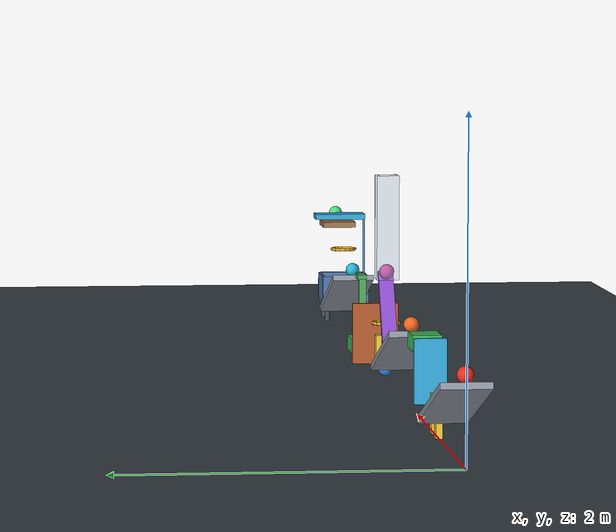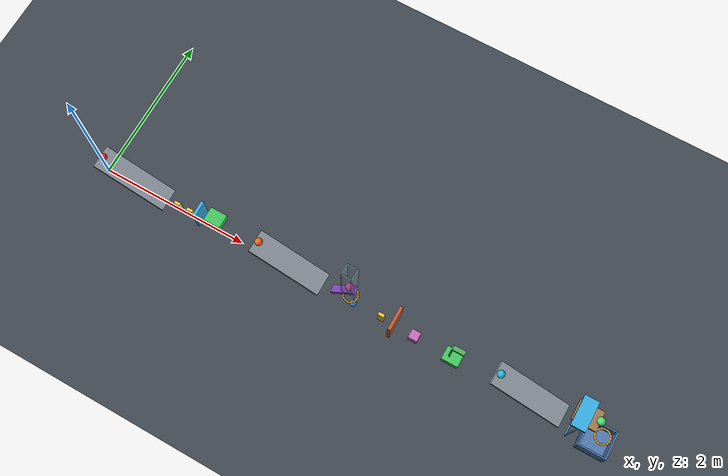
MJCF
<mujoco model="passive_chain_candidate">
  <compiler angle="degree" autolimits="true" inertiafromgeom="auto"/>
  <option timestep="0.002" gravity="0 0 -9.81" integrator="implicitfast" solver="Newton" iterations="100" tolerance="1e-10"/>
  <size njmax="4000" nconmax="1000"/>
  <visual>
    <global azimuth="125" elevation="-18"/>
    <headlight ambient="0.35 0.35 0.35" diffuse="0.7 0.7 0.7" specular="0.2 0.2 0.2"/>
  </visual>

  <!-- All initial generalized velocities are zero. -->
  <!-- solref damping ratio 0.69 approximates e=0.05 for a linearized impact. -->
  <!-- MuJoCo does not provide an exact, velocity-independent restitution attribute. -->
  <!-- Every contact geom explicitly specifies sliding friction 0.70. -->

  <worldbody>
    <light name="main_light" pos="3 -3 7" dir="0 0 -1" directional="true"/>
    <camera name="overview" pos="3.5 -8 4.5" xyaxes="1 0 0 0 0.45 0.893"/>
    <geom name="floor" type="plane" pos="0 0 0" size="12 4 0.1" friction="0.70 0.005 0.0001" solref="0.008 0.69" solimp="0.95 0.99 0.001" rgba="0.24 0.27 0.30 1"/>

    <!-- Ramp top endpoints: (0,0,0.492020) and (0.939693,0,0.15). -->
    <body name="ramp1" pos="0.463006 0 0.302216" quat="0.984807753 0 0.173648178 0">
      <geom name="ramp1_surface" type="box" size="0.50 0.15 0.02" friction="0.70 0.005 0.0001" solref="0.008 0.69" solimp="0.95 0.99 0.001" rgba="0.55 0.58 0.62 1"/>
    </body>
    <body name="ball1" pos="0.054689 0 0.525325">
      <freejoint name="ball1_free"/>
      <geom name="ball1_sphere" type="sphere" size="0.05" mass="0.20" condim="6" friction="0.70 0.005 0.0001" solref="0.008 0.69" solimp="0.95 0.99 0.001" rgba="0.90 0.18 0.12 1"/>
    </body>

    <body name="domino1" pos="1.079693 0 0.12">
      <freejoint name="domino1_free"/>
      <geom name="domino1_box" type="box" size="0.04 0.02 0.12" mass="0.25" friction="0.70 0.005 0.0001" solref="0.008 0.69" solimp="0.95 0.99 0.001" rgba="0.92 0.76 0.22 1"/>
    </body>
    <body name="domino2" pos="1.259693 0 0.12">
      <freejoint name="domino2_free"/>
      <geom name="domino2_box" type="box" size="0.04 0.02 0.12" mass="0.25" friction="0.70 0.005 0.0001" solref="0.008 0.69" solimp="0.95 0.99 0.001" rgba="0.92 0.76 0.22 1"/>
    </body>

    <!-- Positive flap rotation moves the hanging panel toward +x. -->
    <body name="flap1" pos="1.439693 0 0.55">
      <joint name="flap1_hinge" type="hinge" axis="0 -1 0" range="0 65" damping="0.04" armature="0.0001" solreflimit="0.004 1" solimplimit="0.99 0.999 0.0001"/>
      <geom name="flap1_panel" type="box" pos="0 0 -0.20" size="0.02 0.10 0.20" mass="0.30" friction="0.70 0.005 0.0001" solref="0.008 0.69" solimp="0.95 0.99 0.001" rgba="0.20 0.65 0.85 1"/>
    </body>
    <body name="cart1" pos="1.679693 0 0.50">
      <joint name="cart1_slide" type="slide" axis="1 0 0" range="0 0.75" damping="0.20" solreflimit="0.004 1"/>
      <geom name="cart1_chassis" type="box" size="0.11 0.09 0.05" mass="0.50" friction="0.70 0.005 0.0001" solref="0.008 0.69" solimp="0.95 0.99 0.001" rgba="0.25 0.75 0.35 1"/>
    </body>

    <!-- Cart1's front reaches ball2 after 0.45 m of slide travel. -->
    <body name="ramp2" pos="2.698013 0 0.302216" quat="0.984807753 0 0.173648178 0">
      <geom name="ramp2_surface" type="box" size="0.50 0.15 0.02" friction="0.70 0.005 0.0001" solref="0.008 0.69" solimp="0.95 0.99 0.001" rgba="0.55 0.58 0.62 1"/>
    </body>
    <body name="ball2" pos="2.289696 0 0.525325">
      <freejoint name="ball2_free"/>
      <geom name="ball2_sphere" type="sphere" size="0.05" mass="0.20" condim="6" friction="0.70 0.005 0.0001" solref="0.008 0.69" solimp="0.95 0.99 0.001" rgba="0.95 0.40 0.12 1"/>
    </body>

    <!-- The lever starts inclined so the two falling stages remain above z=0. -->
    <!-- Positive rotation lowers its left side and initially raises its right side. -->
    <body name="lever1" pos="3.462020 0 0.459808" quat="0.866025404 0 -0.5 0">
      <joint name="lever1_hinge" type="hinge" axis="0 -1 0" range="0 45" damping="0.04" armature="0.0001" solreflimit="0.004 1" solimplimit="0.99 0.999 0.0001"/>
      <geom name="lever1_beam" type="box" size="0.30 0.05 0.02" mass="0.50" friction="0.70 0.005 0.0001" solref="0.008 0.69" solimp="0.95 0.99 0.001" rgba="0.55 0.30 0.80 1"/>
    </body>
    <body name="ball3" pos="3.536399 0 0.728635">
      <freejoint name="ball3_free"/>
      <geom name="ball3_sphere" type="sphere" size="0.05" mass="0.20" condim="6" friction="0.70 0.005 0.0001" solref="0.008 0.69" solimp="0.95 0.99 0.001" rgba="0.85 0.22 0.62 1"/>
    </body>

    <!-- The right guide starts at z=0.76, above the lever's initial highest corner. -->
    <body name="ball3_guide" pos="3.536399 0 1.03">
      <geom name="ball3_guide_left" type="box" pos="-0.066 0 0" size="0.008 0.074 0.35" friction="0.70 0.005 0.0001" solref="0.008 0.69" solimp="0.95 0.99 0.001" rgba="0.60 0.70 0.80 0.35"/>
      <geom name="ball3_guide_right" type="box" pos="0.066 0 0.04" size="0.008 0.074 0.31" friction="0.70 0.005 0.0001" solref="0.008 0.69" solimp="0.95 0.99 0.001" rgba="0.60 0.70 0.80 0.35"/>
      <geom name="ball3_guide_front" type="box" pos="0 -0.066 0" size="0.058 0.008 0.35" friction="0.70 0.005 0.0001" solref="0.008 0.69" solimp="0.95 0.99 0.001" rgba="0.60 0.70 0.80 0.35"/>
      <geom name="ball3_guide_back" type="box" pos="0 0.066 0" size="0.058 0.008 0.35" friction="0.70 0.005 0.0001" solref="0.008 0.69" solimp="0.95 0.99 0.001" rgba="0.60 0.70 0.80 0.35"/>
    </body>

    <!-- Capsule polygon with a 0.16 m inscribed clear diameter. -->
    <!-- Shifted 0.020 m toward +x to clear the inclined lever at reset. -->
    <body name="ring1" pos="3.556399 0 0.378635">
      <geom name="ring1_segment01" type="capsule" fromto="0.091763 0 0 0.084779 0.035115 0" size="0.01" friction="0.70 0.005 0.0001" solref="0.008 0.69" rgba="0.90 0.65 0.15 1"/>
      <geom name="ring1_segment02" type="capsule" fromto="0.084779 0.035115 0 0.064887 0.064887 0" size="0.01" friction="0.70 0.005 0.0001" solref="0.008 0.69" rgba="0.90 0.65 0.15 1"/>
      <geom name="ring1_segment03" type="capsule" fromto="0.064887 0.064887 0 0.035115 0.084779 0" size="0.01" friction="0.70 0.005 0.0001" solref="0.008 0.69" rgba="0.90 0.65 0.15 1"/>
      <geom name="ring1_segment04" type="capsule" fromto="0.035115 0.084779 0 0 0.091763 0" size="0.01" friction="0.70 0.005 0.0001" solref="0.008 0.69" rgba="0.90 0.65 0.15 1"/>
      <geom name="ring1_segment05" type="capsule" fromto="0 0.091763 0 -0.035115 0.084779 0" size="0.01" friction="0.70 0.005 0.0001" solref="0.008 0.69" rgba="0.90 0.65 0.15 1"/>
      <geom name="ring1_segment06" type="capsule" fromto="-0.035115 0.084779 0 -0.064887 0.064887 0" size="0.01" friction="0.70 0.005 0.0001" solref="0.008 0.69" rgba="0.90 0.65 0.15 1"/>
      <geom name="ring1_segment07" type="capsule" fromto="-0.064887 0.064887 0 -0.084779 0.035115 0" size="0.01" friction="0.70 0.005 0.0001" solref="0.008 0.69" rgba="0.90 0.65 0.15 1"/>
      <geom name="ring1_segment08" type="capsule" fromto="-0.084779 0.035115 0 -0.091763 0 0" size="0.01" friction="0.70 0.005 0.0001" solref="0.008 0.69" rgba="0.90 0.65 0.15 1"/>
      <geom name="ring1_segment09" type="capsule" fromto="-0.091763 0 0 -0.084779 -0.035115 0" size="0.01" friction="0.70 0.005 0.0001" solref="0.008 0.69" rgba="0.90 0.65 0.15 1"/>
      <geom name="ring1_segment10" type="capsule" fromto="-0.084779 -0.035115 0 -0.064887 -0.064887 0" size="0.01" friction="0.70 0.005 0.0001" solref="0.008 0.69" rgba="0.90 0.65 0.15 1"/>
      <geom name="ring1_segment11" type="capsule" fromto="-0.064887 -0.064887 0 -0.035115 -0.084779 0" size="0.01" friction="0.70 0.005 0.0001" solref="0.008 0.69" rgba="0.90 0.65 0.15 1"/>
      <geom name="ring1_segment12" type="capsule" fromto="-0.035115 -0.084779 0 0 -0.091763 0" size="0.01" friction="0.70 0.005 0.0001" solref="0.008 0.69" rgba="0.90 0.65 0.15 1"/>
      <geom name="ring1_segment13" type="capsule" fromto="0 -0.091763 0 0.035115 -0.084779 0" size="0.01" friction="0.70 0.005 0.0001" solref="0.008 0.69" rgba="0.90 0.65 0.15 1"/>
      <geom name="ring1_segment14" type="capsule" fromto="0.035115 -0.084779 0 0.064887 -0.064887 0" size="0.01" friction="0.70 0.005 0.0001" solref="0.008 0.69" rgba="0.90 0.65 0.15 1"/>
      <geom name="ring1_segment15" type="capsule" fromto="0.064887 -0.064887 0 0.084779 -0.035115 0" size="0.01" friction="0.70 0.005 0.0001" solref="0.008 0.69" rgba="0.90 0.65 0.15 1"/>
      <geom name="ring1_segment16" type="capsule" fromto="0.084779 -0.035115 0 0.091763 0 0" size="0.01" friction="0.70 0.005 0.0001" solref="0.008 0.69" rgba="0.90 0.65 0.15 1"/>
    </body>

    <!-- Offset bob makes the vertical ball impact produce a swinging impulse. -->
    <!-- The rigid rod and bob together have mass 0.35 kg. -->
    <body name="pendulum1" pos="3.596399 0 0.555345">
      <joint name="pendulum1_hinge" type="hinge" axis="0 -1 0" range="0 40" damping="0.04" armature="0.0001" solreflimit="0.004 1" solimplimit="0.99 0.999 0.0001"/>
      <geom name="pendulum1_rod" type="capsule" fromto="0 0 0 0 0 -0.50" size="0.008" mass="0.33" friction="0.70 0.005 0.0001" solref="0.008 0.69" solimp="0.95 0.99 0.001" rgba="0.65 0.68 0.72 1"/>
      <geom name="pendulum1_bob" type="sphere" pos="0 0 -0.50" size="0.045" mass="0.02" friction="0.70 0.005 0.0001" solref="0.008 0.69" solimp="0.95 0.99 0.001" rgba="0.20 0.50 0.85 1"/>
    </body>
    <body name="domino3" pos="3.980000 0 0.12">
      <freejoint name="domino3_free"/>
      <geom name="domino3_box" type="box" size="0.04 0.02 0.12" mass="0.25" friction="0.70 0.005 0.0001" solref="0.008 0.69" solimp="0.95 0.99 0.001" rgba="0.92 0.76 0.22 1"/>
    </body>

    <!-- Upright, bottom-hinged door stores gravitational potential energy. -->
    <!-- Its explicit inertia represents a top-weighted 0.45 kg panel. -->
    <body name="door1" pos="4.160000 0 0.02">
      <inertial pos="0 0 0.35" mass="0.45" diaginertia="0.009 0.009 0.004"/>
      <joint name="door1_hinge" type="hinge" axis="0 1 0" range="0 70" damping="0.04" armature="0.0001" solreflimit="0.004 1" solimplimit="0.99 0.999 0.0001"/>
      <geom name="door1_panel" type="box" pos="0 0 0.21" size="0.02 0.16 0.21" friction="0.70 0.005 0.0001" solref="0.008 0.69" solimp="0.95 0.99 0.001" rgba="0.70 0.35 0.18 1"/>
    </body>
    <body name="block1" pos="4.440000 0 0.06">
      <freejoint name="block1_free"/>
      <geom name="block1_cube" type="box" size="0.06 0.06 0.06" mass="0.35" friction="0.70 0.005 0.0001" solref="0.008 0.69" solimp="0.95 0.99 0.001" rgba="0.75 0.40 0.70 1"/>
    </body>

    <!-- The chassis is 0.22 x 0.18 x 0.10 m; attachments share its 0.50 kg total mass. -->
    <!-- The slide supports the cart 1 mm above the floor. -->
    <body name="cart2" pos="4.960000 0 0.051">
      <joint name="cart2_slide" type="slide" axis="1 0 0" range="0 0.75" damping="0.20" solreflimit="0.004 1"/>
      <geom name="cart2_chassis" type="box" size="0.11 0.09 0.05" mass="0.485" friction="0.70 0.005 0.0001" solref="0.008 0.69" solimp="0.95 0.99 0.001" rgba="0.25 0.75 0.35 1"/>
      <geom name="cart2_striker_post" type="box" pos="-0.04 0 0.25" size="0.012 0.025 0.225" mass="0.01" friction="0.70 0.005 0.0001" solref="0.008 0.69" solimp="0.95 0.99 0.001" rgba="0.30 0.65 0.35 1"/>
      <geom name="cart2_striker_head" type="box" pos="0.035 0 0.484" size="0.075 0.03 0.02" mass="0.005" friction="0.70 0.005 0.0001" solref="0.008 0.69" solimp="0.95 0.99 0.001" rgba="0.30 0.65 0.35 1"/>
    </body>

    <!-- Cart2's striker reaches ball4 after 0.42 m of travel. -->
    <body name="ramp3" pos="5.948316 0 0.302216" quat="0.984807753 0 0.173648178 0">
      <geom name="ramp3_surface" type="box" size="0.50 0.15 0.02" friction="0.70 0.005 0.0001" solref="0.008 0.69" solimp="0.95 0.99 0.001" rgba="0.55 0.58 0.62 1"/>
    </body>
    <body name="ball4" pos="5.540000 0 0.525325">
      <freejoint name="ball4_free"/>
      <geom name="ball4_sphere" type="sphere" size="0.05" mass="0.20" condim="6" friction="0.70 0.005 0.0001" solref="0.008 0.69" solimp="0.95 0.99 0.001" rgba="0.15 0.70 0.85 1"/>
    </body>

    <!-- Horizontal flap swings clockwise viewed from above. -->
    <!-- A low trigger arm bridges ramp-exit height to shelf height. -->
    <!-- Main panel and trigger attachments together have mass 0.28 kg. -->
    <body name="flap2" pos="6.525003 -0.20 0.84">
      <joint name="flap2_hinge" type="hinge" axis="0 0 -1" range="0 60" damping="0.04" armature="0.0001" solreflimit="0.004 1" solimplimit="0.99 0.999 0.0001"/>
      <geom name="flap2_panel" type="box" pos="0 0.19 0" size="0.09 0.19 0.02" mass="0.27" friction="0.70 0.005 0.0001" solref="0.008 0.69" solimp="0.95 0.99 0.001" rgba="0.20 0.65 0.85 1"/>
      <geom name="flap2_trigger_post" type="capsule" fromto="0 0 -0.66 0 0 0" size="0.008" mass="0.005" friction="0.70 0.005 0.0001" solref="0.008 0.69" solimp="0.95 0.99 0.001" rgba="0.30 0.55 0.70 1"/>
      <geom name="flap2_trigger_arm" type="capsule" fromto="0 0 -0.66 0 0.20 -0.66" size="0.01" mass="0.005" friction="0.70 0.005 0.0001" solref="0.008 0.69" solimp="0.95 0.99 0.001" rgba="0.30 0.55 0.70 1"/>
    </body>

    <body name="shelf1" pos="6.570003 0 0.78">
      <geom name="shelf1_platform" type="box" size="0.15 0.125 0.02" friction="0.70 0.005 0.0001" solref="0.008 0.69" solimp="0.95 0.99 0.001" rgba="0.60 0.45 0.30 1"/>
    </body>
    <body name="ball5" pos="6.715003 0 0.85">
      <freejoint name="ball5_free"/>
      <geom name="ball5_sphere" type="sphere" size="0.05" mass="0.20" condim="6" friction="0.70 0.005 0.0001" solref="0.008 0.69" solimp="0.95 0.99 0.001" rgba="0.30 0.85 0.45 1"/>
    </body>

    <body name="ring2" pos="6.850003 -0.08 0.55">
      <geom name="ring2_segment01" type="capsule" fromto="0.091763 0 0 0.084779 0.035115 0" size="0.01" friction="0.70 0.005 0.0001" solref="0.008 0.69" rgba="0.90 0.65 0.15 1"/>
      <geom name="ring2_segment02" type="capsule" fromto="0.084779 0.035115 0 0.064887 0.064887 0" size="0.01" friction="0.70 0.005 0.0001" solref="0.008 0.69" rgba="0.90 0.65 0.15 1"/>
      <geom name="ring2_segment03" type="capsule" fromto="0.064887 0.064887 0 0.035115 0.084779 0" size="0.01" friction="0.70 0.005 0.0001" solref="0.008 0.69" rgba="0.90 0.65 0.15 1"/>
      <geom name="ring2_segment04" type="capsule" fromto="0.035115 0.084779 0 0 0.091763 0" size="0.01" friction="0.70 0.005 0.0001" solref="0.008 0.69" rgba="0.90 0.65 0.15 1"/>
      <geom name="ring2_segment05" type="capsule" fromto="0 0.091763 0 -0.035115 0.084779 0" size="0.01" friction="0.70 0.005 0.0001" solref="0.008 0.69" rgba="0.90 0.65 0.15 1"/>
      <geom name="ring2_segment06" type="capsule" fromto="-0.035115 0.084779 0 -0.064887 0.064887 0" size="0.01" friction="0.70 0.005 0.0001" solref="0.008 0.69" rgba="0.90 0.65 0.15 1"/>
      <geom name="ring2_segment07" type="capsule" fromto="-0.064887 0.064887 0 -0.084779 0.035115 0" size="0.01" friction="0.70 0.005 0.0001" solref="0.008 0.69" rgba="0.90 0.65 0.15 1"/>
      <geom name="ring2_segment08" type="capsule" fromto="-0.084779 0.035115 0 -0.091763 0 0" size="0.01" friction="0.70 0.005 0.0001" solref="0.008 0.69" rgba="0.90 0.65 0.15 1"/>
      <geom name="ring2_segment09" type="capsule" fromto="-0.091763 0 0 -0.084779 -0.035115 0" size="0.01" friction="0.70 0.005 0.0001" solref="0.008 0.69" rgba="0.90 0.65 0.15 1"/>
      <geom name="ring2_segment10" type="capsule" fromto="-0.084779 -0.035115 0 -0.064887 -0.064887 0" size="0.01" friction="0.70 0.005 0.0001" solref="0.008 0.69" rgba="0.90 0.65 0.15 1"/>
      <geom name="ring2_segment11" type="capsule" fromto="-0.064887 -0.064887 0 -0.035115 -0.084779 0" size="0.01" friction="0.70 0.005 0.0001" solref="0.008 0.69" rgba="0.90 0.65 0.15 1"/>
      <geom name="ring2_segment12" type="capsule" fromto="-0.035115 -0.084779 0 0 -0.091763 0" size="0.01" friction="0.70 0.005 0.0001" solref="0.008 0.69" rgba="0.90 0.65 0.15 1"/>
      <geom name="ring2_segment13" type="capsule" fromto="0 -0.091763 0 0.035115 -0.084779 0" size="0.01" friction="0.70 0.005 0.0001" solref="0.008 0.69" rgba="0.90 0.65 0.15 1"/>
      <geom name="ring2_segment14" type="capsule" fromto="0.035115 -0.084779 0 0.064887 -0.064887 0" size="0.01" friction="0.70 0.005 0.0001" solref="0.008 0.69" rgba="0.90 0.65 0.15 1"/>
      <geom name="ring2_segment15" type="capsule" fromto="0.064887 -0.064887 0 0.084779 -0.035115 0" size="0.01" friction="0.70 0.005 0.0001" solref="0.008 0.69" rgba="0.90 0.65 0.15 1"/>
      <geom name="ring2_segment16" type="capsule" fromto="0.084779 -0.035115 0 0.091763 0 0" size="0.01" friction="0.70 0.005 0.0001" solref="0.008 0.69" rgba="0.90 0.65 0.15 1"/>
    </body>

    <!-- Inner footprint 0.32 x 0.32 m; wall height 0.20 m; thickness 0.02 m. -->
    <!-- Bottom top is z=0.15, giving a resting ball center at z=0.20. -->
    <body name="bin1" pos="6.850003 -0.08 0.14">
      <geom name="bin1_bottom" type="box" size="0.18 0.18 0.01" friction="0.70 0.005 0.0001" solref="0.008 0.69" solimp="0.95 0.99 0.001" rgba="0.30 0.45 0.65 1"/>
      <geom name="bin1_wall_left" type="box" pos="-0.17 0 0.11" size="0.01 0.18 0.10" friction="0.70 0.005 0.0001" solref="0.008 0.69" solimp="0.95 0.99 0.001" rgba="0.30 0.45 0.65 1"/>
      <geom name="bin1_wall_right" type="box" pos="0.17 0 0.11" size="0.01 0.18 0.10" friction="0.70 0.005 0.0001" solref="0.008 0.69" solimp="0.95 0.99 0.001" rgba="0.30 0.45 0.65 1"/>
      <geom name="bin1_wall_front" type="box" pos="0 -0.17 0.11" size="0.16 0.01 0.10" friction="0.70 0.005 0.0001" solref="0.008 0.69" solimp="0.95 0.99 0.001" rgba="0.30 0.45 0.65 1"/>
      <geom name="bin1_wall_back" type="box" pos="0 0.17 0.11" size="0.16 0.01 0.10" friction="0.70 0.005 0.0001" solref="0.008 0.69" solimp="0.95 0.99 0.001" rgba="0.30 0.45 0.65 1"/>
      <geom name="bin1_leg01" type="cylinder" pos="-0.14 -0.14 -0.075" size="0.018 0.065" friction="0.70 0.005 0.0001" solref="0.008 0.69" rgba="0.25 0.30 0.35 1"/>
      <geom name="bin1_leg02" type="cylinder" pos="-0.14 0.14 -0.075" size="0.018 0.065" friction="0.70 0.005 0.0001" solref="0.008 0.69" rgba="0.25 0.30 0.35 1"/>
      <geom name="bin1_leg03" type="cylinder" pos="0.14 -0.14 -0.075" size="0.018 0.065" friction="0.70 0.005 0.0001" solref="0.008 0.69" rgba="0.25 0.30 0.35 1"/>
      <geom name="bin1_leg04" type="cylinder" pos="0.14 0.14 -0.075" size="0.018 0.065" friction="0.70 0.005 0.0001" solref="0.008 0.69" rgba="0.25 0.30 0.35 1"/>
    </body>
  </worldbody>

  <keyframe>
    <key name="start"/>
  </keyframe>
</mujoco>
